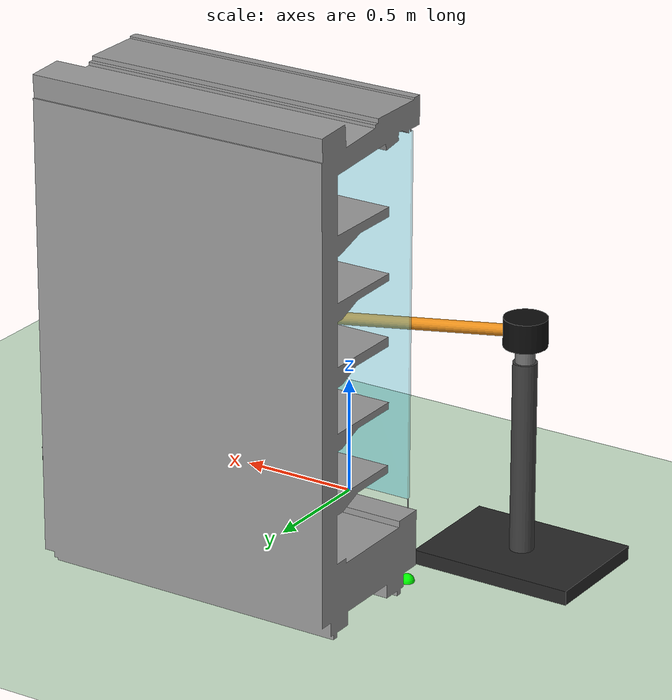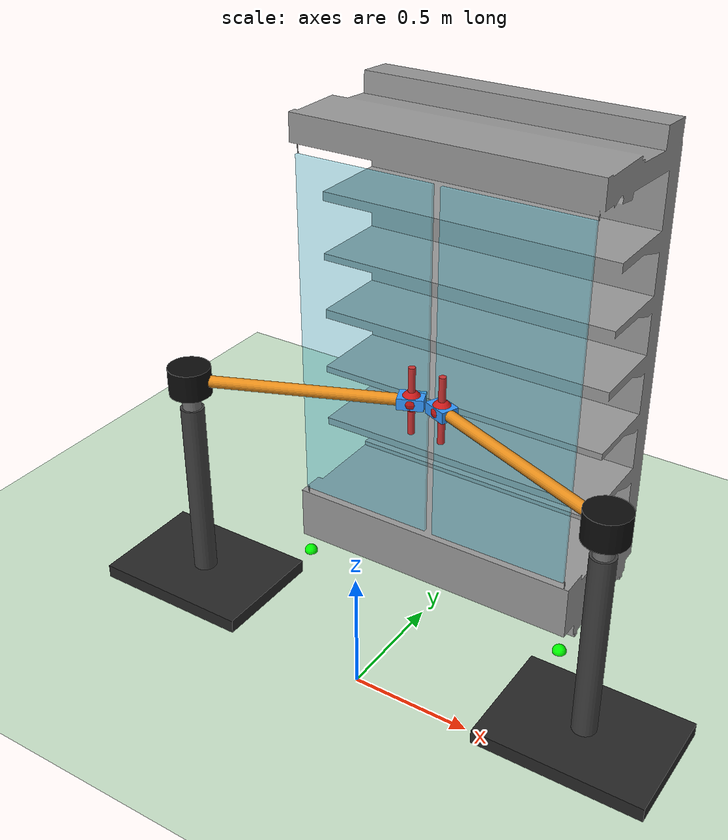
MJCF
<mujoco model="Test_osaka_3p_mechanical_rotary_system">

  <option timestep="0.002" gravity="0 0 -9.81"/>
  <compiler angle="radian"/>

  <asset>
    <!-- Frigo -->
    <mesh name="frigo_mesh" file="Osaka_3p_corpo.obj"/>
    <mesh name="porta_sx_mesh" file="Osaka_3p_portasx.obj"/>
    <mesh name="porta_dx_mesh" file="Osaka_3p_portadx.obj"/>
  </asset>

  <worldbody>
    <geom name="pavimento" type="plane" size="5 5 0.1" rgba="0.8 0.9 0.8 1"/>
    <light directional="true" diffuse="0.8 0.8 0.8" specular="0.2 0.2 0.2" pos="0 0 5" dir="0 0 -1" castshadow="false"/>
    <light name="top" pos="0 0 2" mode="trackcom"/>

    <!-- Sistema meccanico rotativo porta sinistra -->
    <body name="sistema_meccanico_sx" pos="-0.95 0.2 0">

      <geom name="base_meccanica_sx" type="box" pos="0 0 0.03" size="0.35 0.25 0.03" rgba="0.15 0.15 0.15 1" contype="0" conaffinity="0"/>
      <geom name="colonna_fissa_sx" type="cylinder" pos="0 0 0.45" size="0.05 0.42" rgba="0.25 0.25 0.25 1" contype="0" conaffinity="0"/>

      <body name="colonna_regolabile_sx" pos="0 0 1.00">
        <inertial pos="0 0 -0.25" mass="4.0" diaginertia="0.08 0.08 0.02"/>
        <geom name="colonna_mobile_sx" type="cylinder" pos="0 0 -0.25" size="0.04 0.30" rgba="0.45 0.45 0.45 1" contype="0" conaffinity="0"/>

        <body name="motoriduttore_sx" pos="0 0 0">
          <inertial pos="0 0 0" mass="3.0" diaginertia="0.04 0.04 0.03"/>
          <geom name="motoriduttore_visual_sx" type="cylinder" pos="0 0 0" size="0.09 0.06" rgba="0.05 0.05 0.05 1" contype="0" conaffinity="0"/>
          <site name="asse_motoriduttore_sx" pos="0 0 0" size="0.035" rgba="0 0 1 1"/>

          <body name="braccio_rotante_sx" pos="0 0 0" xyaxes="0.924678 0.380750 0 -0.380750 0.924678 0">
            <joint name="giunto_rotante_sx" type="hinge" axis="0 0 1" range="-1.5708 1.5708" limited="true" damping="5" frictionloss="1"/>

            <inertial pos="0.465 0 0" mass="2.5" diaginertia="0.08 0.08 0.006"/>
            <geom name="braccio_guida_visual_sx" type="capsule" fromto="0 0 0 0.94 0 0" size="0.025" rgba="0.9 0.55 0.1 1" contype="0" conaffinity="0"/>
            <site name="asse_braccio_sx" pos="0.94 0 0" size="0.025" rgba="1 0.5 0 1"/>

            <body name="carrello_telescopico_sx" pos="0.919239 0 0">
              <joint name="compensazione_radiale_sx" type="slide" axis="1 0 0" range="-0.6 0.20" limited="true" damping="15" frictionloss="0.5"/>

              <inertial pos="0 0 0" mass="0.8" diaginertia="0.004 0.004 0.002"/>
              <geom name="carrello_visual_sx" type="box" pos="0 0 0" size="0.055 0.04 0.025" rgba="0.2 0.6 1 1" contype="0" conaffinity="0"/>
              <geom name="stelo_telescopico_visual_sx" type="capsule" fromto="-0.35 0 0 0 0 0" size="0.018" rgba="0.75 0.75 0.75 1" contype="0" conaffinity="0"/>

              <body name="giunto_allineamento_sx" pos="0 0 0">
                <joint name="snodo_allineamento_sx" type="ball" damping="0.1"/>

                <inertial pos="0 0 0" mass="0.4" diaginertia="0.002 0.002 0.002"/>
                <geom name="snodo_allineamento_visual_sx" type="sphere" pos="0 0 0" size="0.035" rgba="0.1 0.6 1 1" contype="0" conaffinity="0"/>

                <body name="end_effector_sx" pos="0 0 0">
                  <inertial pos="0 0 0" mass="0.3" diaginertia="0.001 0.001 0.001"/>
                  <geom name="end_effector_visual_sx" type="sphere" pos="0 0 0" size="0.045" rgba="0.8 0.1 0.1 1" contype="0" conaffinity="0"/>
                  <site name="punto_presa_meccanico_sx" pos="0 0 0" size="0.03" rgba="1 0 0 1"/>
                </body>
              </body>
            </body>
          </body>
        </body>
      </body>
    </body>

    <!-- Sistema meccanico rotativo porta destra -->
    <body name="sistema_meccanico_dx" pos="0.9 0.2 0">

      <geom name="base_meccanica_dx" type="box" pos="0 0 0.03" size="0.35 0.25 0.03" rgba="0.15 0.15 0.15 1" contype="0" conaffinity="0"/>
      <geom name="colonna_fissa_dx" type="cylinder" pos="0 0 0.45" size="0.05 0.42" rgba="0.25 0.25 0.25 1" contype="0" conaffinity="0"/>

      <body name="colonna_regolabile_dx" pos="0 0 1.00">
        <inertial pos="0 0 -0.25" mass="4.0" diaginertia="0.08 0.08 0.02"/>
        <geom name="colonna_mobile_dx" type="cylinder" pos="0 0 -0.25" size="0.04 0.30" rgba="0.45 0.45 0.45 1" contype="0" conaffinity="0"/>

        <body name="motoriduttore_dx" pos="0 0 0">
          <inertial pos="0 0 0" mass="3.0" diaginertia="0.04 0.04 0.03"/>
          <geom name="motoriduttore_visual_dx" type="cylinder" pos="0 0 0" size="0.09 0.06" rgba="0.05 0.05 0.05 1" contype="0" conaffinity="0"/>
          <site name="asse_motoriduttore_dx" pos="0 0 0" size="0.035" rgba="0 0 1 1"/>

          <body name="braccio_rotante_dx" pos="0 0 0" xyaxes="-0.926232 0.376955 0 -0.376955 -0.926232 0">
            <joint name="giunto_rotante_dx" type="hinge" axis="0 0 1" range="-1.5708 1.5708" limited="true" damping="5" frictionloss="1"/>

            <inertial pos="0.465 0 0" mass="2.5" diaginertia="0.08 0.08 0.006"/>
            <geom name="braccio_guida_visual_dx" type="capsule" fromto="0 0 0 0.94 0 0" size="0.025" rgba="0.9 0.55 0.1 1" contype="0" conaffinity="0"/>
            <site name="asse_braccio_dx" pos="0.94 0 0" size="0.025" rgba="1 0.5 0 1"/>

            <body name="carrello_telescopico_dx" pos="0.928493 0 0">
              <joint name="compensazione_radiale_dx" type="slide" axis="1 0 0" range="-0.6 0.20" limited="true" damping="15" frictionloss="0.5"/>

              <inertial pos="0 0 0" mass="0.8" diaginertia="0.004 0.004 0.002"/>
              <geom name="carrello_visual_dx" type="box" pos="0 0 0" size="0.055 0.04 0.025" rgba="0.2 0.6 1 1" contype="0" conaffinity="0"/>
              <geom name="stelo_telescopico_visual_dx" type="capsule" fromto="-0.35 0 0 0 0 0" size="0.018" rgba="0.75 0.75 0.75 1" contype="0" conaffinity="0"/>

              <body name="giunto_allineamento_dx" pos="0 0 0">
                <joint name="snodo_allineamento_dx" type="ball" damping="0.1"/>

                <inertial pos="0 0 0" mass="0.4" diaginertia="0.002 0.002 0.002"/>
                <geom name="snodo_allineamento_visual_dx" type="sphere" pos="0 0 0" size="0.035" rgba="0.1 0.6 1 1" contype="0" conaffinity="0"/>

                <body name="end_effector_dx" pos="0 0 0">
                  <inertial pos="0 0 0" mass="0.3" diaginertia="0.001 0.001 0.001"/>
                  <geom name="end_effector_visual_dx" type="sphere" pos="0 0 0" size="0.045" rgba="0.8 0.1 0.1 1" contype="0" conaffinity="0"/>
                  <site name="punto_presa_meccanico_dx" pos="0 0 0" size="0.03" rgba="1 0 0 1"/>
                </body>
              </body>
            </body>
          </body>
        </body>
      </body>
    </body>

    <!-- Banco frigo Osaka 3P -->
    <body name="banco_frigo" pos="-0.7 0.6 0">
      <geom type="mesh" mesh="frigo_mesh" rgba="0.6 0.6 0.6 1" contype="0" conaffinity="0"/>

      <body name="porta_sx" pos="0 0 0">
        <joint name="giunto_porta_sx" type="hinge" pos="0.04 0 0" axis="0 0 1" range="-1.6581 0" limited="true" damping="5" frictionloss="5.28"/>
        <inertial pos="0.35 0.0 1.1" mass="12.0" diaginertia="2.512 2.884 0.372"/>
        <geom type="mesh" mesh="porta_sx_mesh" rgba="0.3 0.8 0.9 0.4" contype="1" conaffinity="1"/>
        <site name="debug_cernierasx" pos="0.04 0 0" size="0.03" rgba="0 1 0 1"/>

        <body name="maniglia_sx" pos="0.60 -0.05 1.0">
          <inertial pos="0 0 0" mass="0.2" diaginertia="0.001 0.001 0.001"/>
          <geom name="manigliasx" type="cylinder" size="0.015 0.15" rgba="0.8 0.2 0.2 1" contype="0" conaffinity="0"/>
          <site name="target_manigliasx" pos="0 0 0" size="0.02" rgba="1 0 0 0.5"/>
        </body>
      </body>

      <body name="porta_dx" pos="0 0 0">
        <joint name="giunto_porta_dx" type="hinge" pos="1.305 0 0" axis="0 0 1" range="0 1.6581" limited="true" damping="5" frictionloss="5.28"/>
        <inertial pos="1.0 0.0 1.1" mass="12.0" diaginertia="2.512 2.884 0.372"/>
        <geom type="mesh" mesh="porta_dx_mesh" rgba="0.3 0.8 0.9 0.4" contype="1" conaffinity="1"/>
        <site name="debug_cernieradx" pos="1.305 0 0" size="0.03" rgba="0 1 0 1"/>

        <body name="maniglia_dx" pos="0.74 -0.05 1.0">
          <inertial pos="0 0 0" mass="0.2" diaginertia="0.001 0.001 0.001"/>
          <geom name="manigliadx" type="cylinder" size="0.015 0.15" rgba="0.8 0.2 0.2 1" contype="0" conaffinity="0"/>
          <site name="target_manigliadx" pos="0 0 0" size="0.02" rgba="1 0 0 0.5"/>
        </body>
      </body>
    </body>
  </worldbody>

  <equality>
    <connect name="presa_meccanica_maniglia_sx"
             site1="punto_presa_meccanico_sx"
             site2="target_manigliasx"
             solimp="0.85 0.95 0.002"
             solref="0.03 1"/>

    <connect name="presa_meccanica_maniglia_dx"
             site1="punto_presa_meccanico_dx"
             site2="target_manigliadx"
             solimp="0.85 0.95 0.002"
             solref="0.03 1"/>
  </equality>

  <actuator>
    <motor name="motore_motoriduttore_sx"
           joint="giunto_rotante_sx"
           gear="1"
           ctrllimited="true"
           ctrlrange="-150 150"/>

    <motor name="motore_motoriduttore_dx"
           joint="giunto_rotante_dx"
           gear="1"
           ctrllimited="true"
           ctrlrange="-150 150"/>
  </actuator>

</mujoco>
